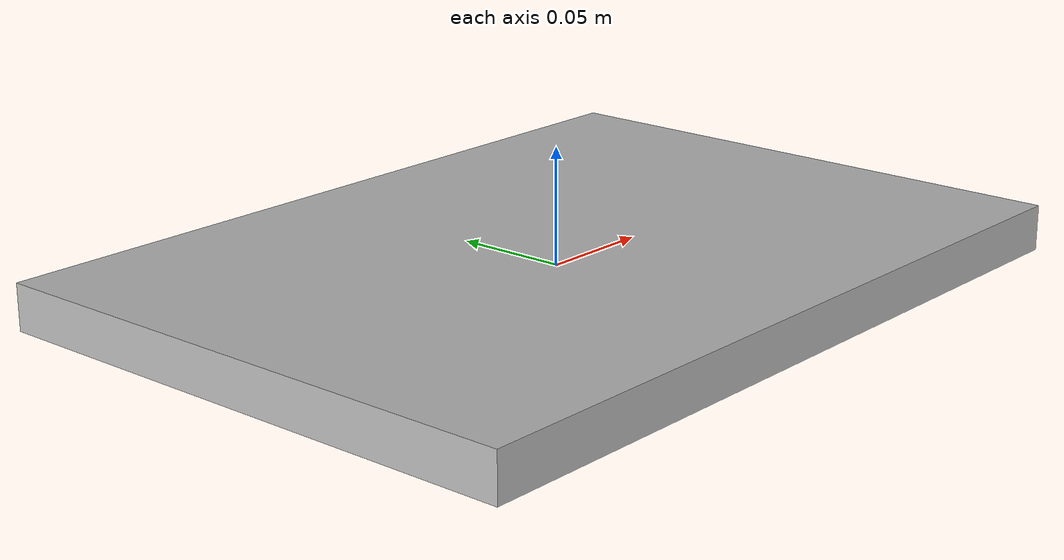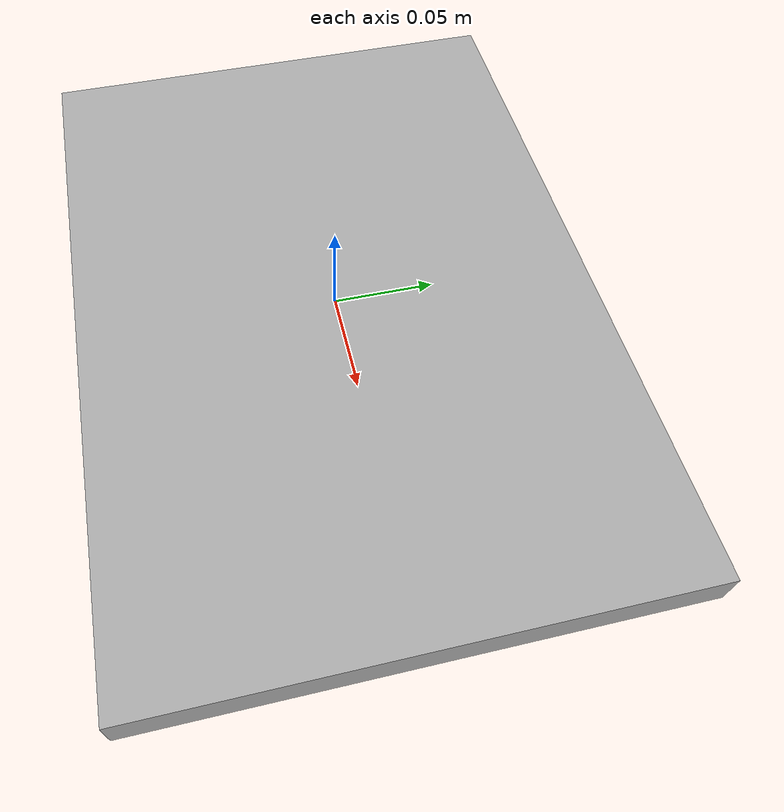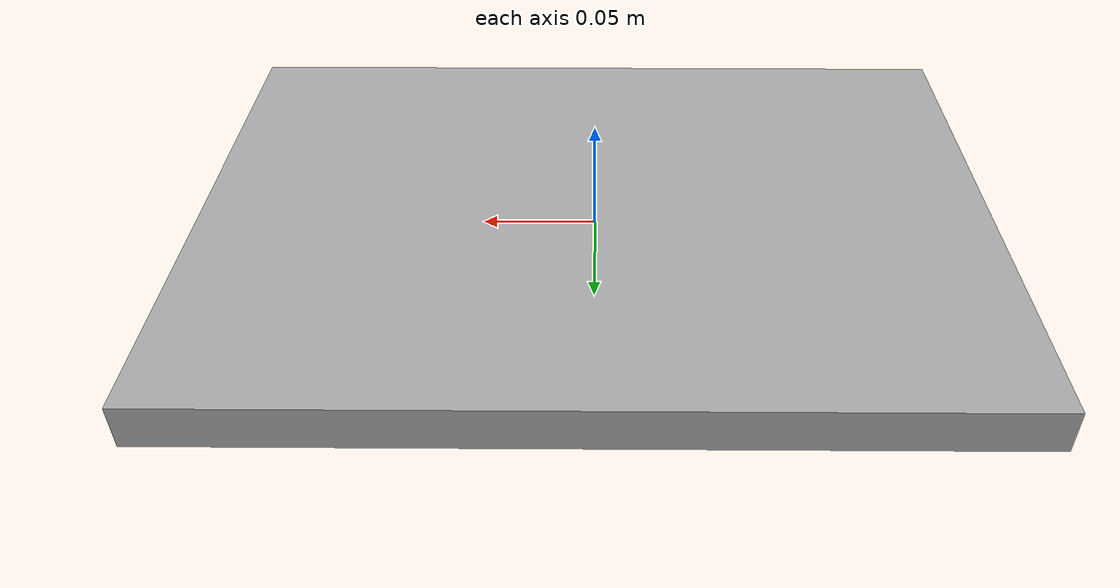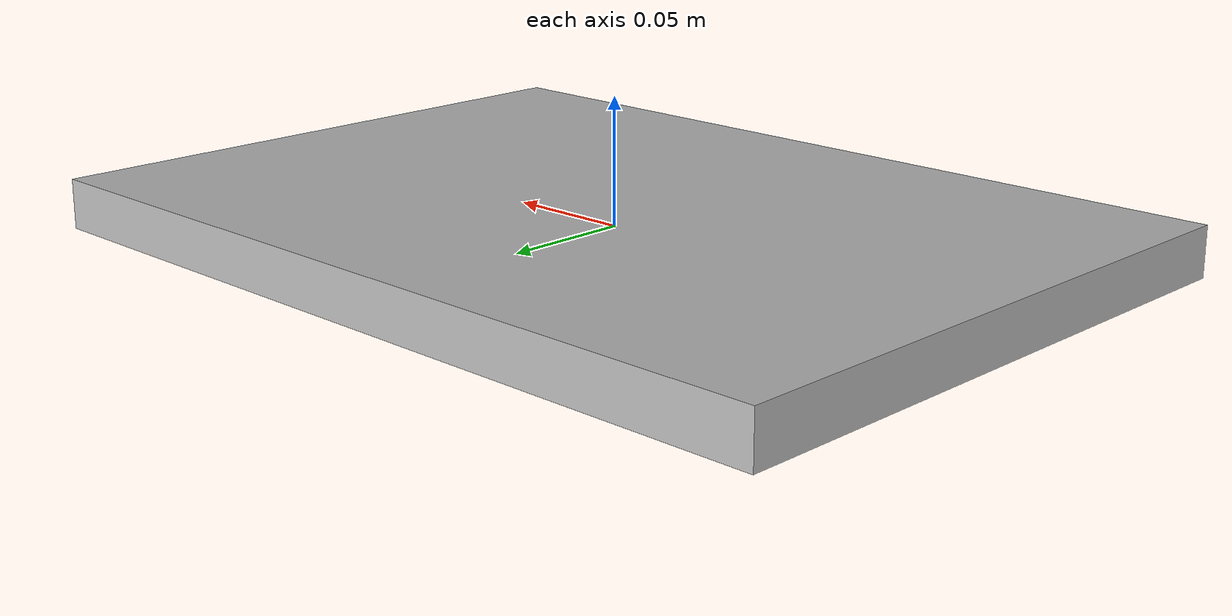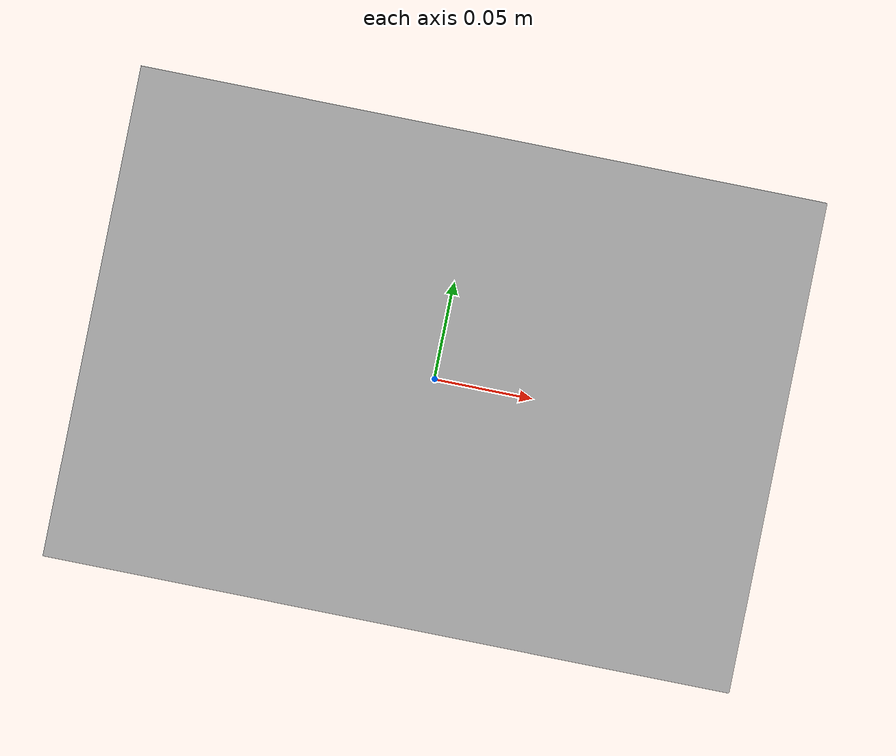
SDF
<?xml version='1.0'?>
<sdf version='1.6'>
  <world name='grocery_world'>
  <model name='newspaper_1'>
    <link name='link_0'>
       <visual name='visual'>
       <geometry>
          <box>
            <size>0.35 0.25 0.02</size>
          </box>
        </geometry>
        <cast_shadows>1</cast_shadows>
        <transparency>0</transparency>
      </visual>
      <collision name='collision'>
        <laser_retro>0</laser_retro>
        <max_contacts>10</max_contacts>
        <pose frame=''>0 0 0 0 -0 0</pose>
        <geometry>
          <box>
            <size>0.35 0.25 0.02</size>
          </box>
        </geometry>
       </collision>
        <inertial>
          <pose>0 0 0 0 0 0</pose>
          <mass>0.56</mass>
          <inertia>
            <ixx>0.004878</ixx>
            <ixy>-6.2341e-07</ixy>
            <ixz>-7.4538e-07</ixz>
            <iyy>0.00090164</iyy>
            <iyz>-0.00014394</iyz>
            <izz>0.0042946</izz>
          </inertia>
    </inertial>
    </link>
    <static>1</static>
    <allow_auto_disable>1</allow_auto_disable>
  </model>
</world>
</sdf>
